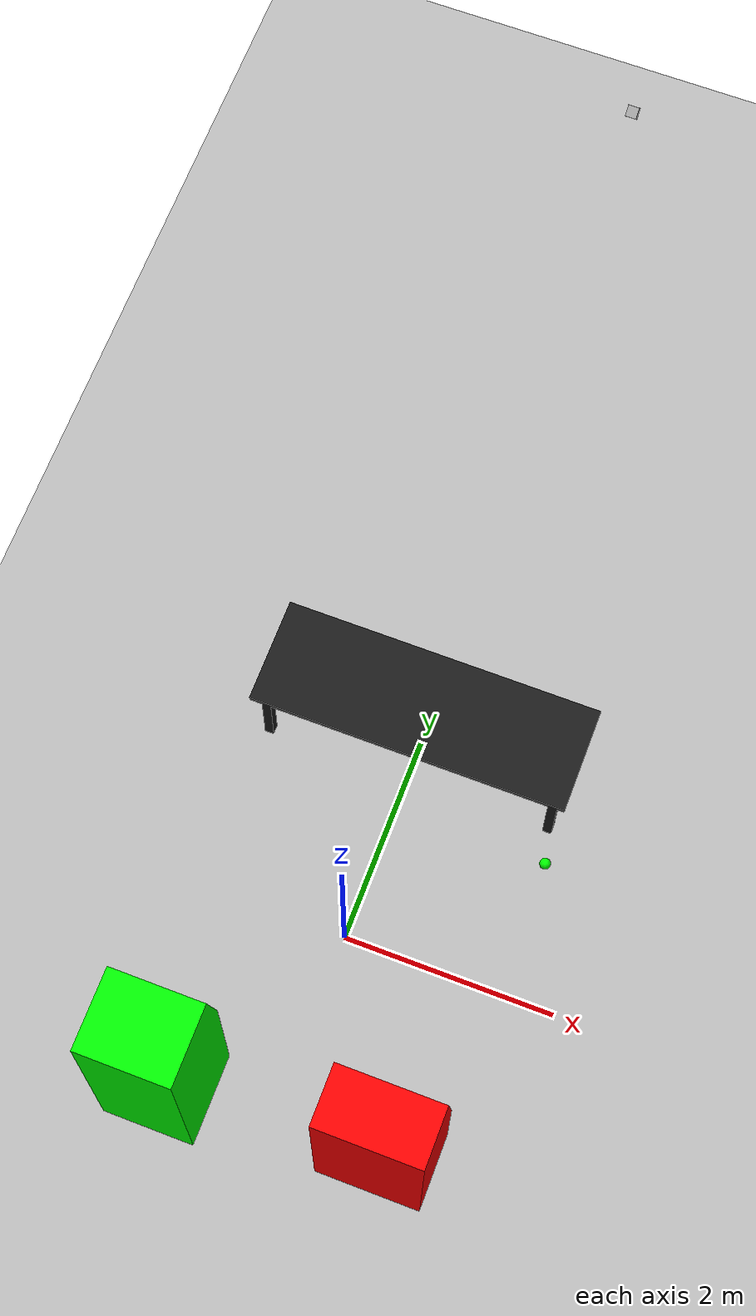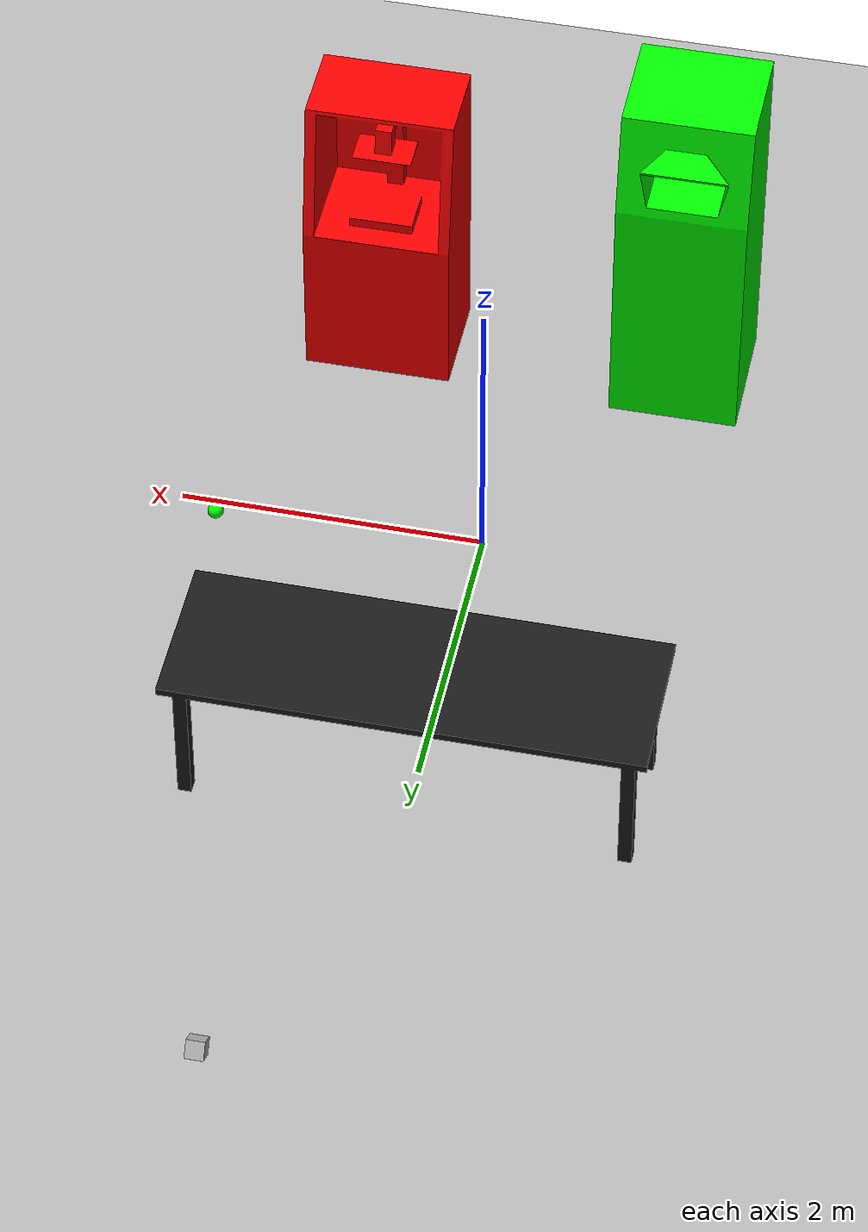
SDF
<sdf version="1.9">
 <world name="default">
  <plugin filename="gz-sim-sensors-system" name="gz::sim::systems::Sensors">
   <render_engine>ogre2</render_engine>
  </plugin>
  <scene><shadows>true</shadows><ambient>0.4 0.4 0.4 1</ambient><background>0.7 0.7 0.7 1</background></scene>
  <light name="sun" type="directional">
   <pose>0 0 10 0 0 1</pose>
   <diffuse>0.9 0.9 0.9 1</diffuse>
   <specular>0.3 0.3 0.3 1</specular>
   <direction>-0.5 0.1 -0.9</direction>
  </light>
  <model name="Camera">
   <pose>0 7 3.5 0 0.5999 -1.5708</pose>
   <static>true</static>
   <link name="link">
    <pose>0.05 0.05 0.05 0 0 0</pose>
    <collision name="collision"><geometry><box><size>0.1 0.1 0.1</size></box></geometry></collision>
    <visual name="visual"><geometry><box><size>0.1 0.1 0.1</size></box></geometry></visual>
    <sensor name="rgb_camera" type="camera">
     <always_on>true</always_on>
     <update_rate>10</update_rate>
     <camera>
      <horizontal_fov>1.5</horizontal_fov>
      <image><width>800</width><height>600</height><format>R8G8B8</format></image>
      <clip><near>0.1</near><far>30</far></clip>
     </camera>
     <topic>/camera/image</topic>
    </sensor>
    <sensor name="depth_camera" type="depth_camera">
     <always_on>true</always_on>
     <update_rate>10</update_rate>
     <camera>
      <horizontal_fov>1.5</horizontal_fov>
      <image><width>800</width><height>600</height><format>R_FLOAT32</format></image>
      <clip><near>0.1</near><far>30</far></clip>
     </camera>
     <topic>/depth_camera/image</topic>
    </sensor>
   </link>
  </model>
  <model name="Curing_station">
   <static>true</static>
   <link name="Curing_link">
    <pose>-1 -1.8 0.9 0 0 0</pose>
    <visual name="Curing_visual">
     <geometry><mesh><uri>meshes/Curing.obj</uri><scale>0.0015 0.0015 0.0015</scale></mesh></geometry>
     <material><ambient>0 1 0 1</ambient><diffuse>0 1 0 1</diffuse></material>
    </visual>
    <collision name="Curing_collision">
     <geometry><mesh><uri>meshes/Curing_col.obj</uri><scale>0.001 0.001 0.001</scale></mesh></geometry>
    </collision>
   </link>
  </model>
  <model name="3d Printer">
   <static>true</static>
   <link name="Printer_link">
    <pose>1 -1.9 0.65 0 0 0</pose>
    <visual name="Printer_visual">
     <geometry><mesh><uri>meshes/Printer.obj</uri><scale>0.002 0.002 0.002</scale></mesh></geometry>
     <material><ambient>1 0 0 1</ambient><diffuse>1 0 0 1</diffuse></material>
    </visual>
    <collision name="Printer_collision">
     <geometry><mesh><uri>meshes/Printer_col.obj</uri><scale>0.001 0.001 0.001</scale></mesh></geometry>
    </collision>
   </link>
  </model>
  <model name="Table">
   <static>true</static>
   <link name="Table_link">
    <pose>0 2.02 0 1.570 0 0</pose>
    <visual name="Table_visual">
     <geometry><mesh><uri>meshes/Table.obj</uri><scale>0.005 0.005 0.005</scale></mesh></geometry>
     <material><ambient>0.1 0.1 0.1 1</ambient><diffuse>0.1 0.1 0.1 1</diffuse></material>
    </visual>
    <collision name="Table_collision">
     <geometry><mesh><uri>meshes/Table_col.obj</uri><scale>0.001 0.001 0.001</scale></mesh></geometry>
    </collision>
   </link>
  </model>
  <model name="target_marker">
   <static>true</static>
   <pose>1.5 1.0 1.0 0 0 0</pose>
   <link name="marker_link">
    <visual name="marker_visual">
     <geometry><sphere><radius>0.05</radius></sphere></geometry>
     <material><ambient>0 1 0 1</ambient><diffuse>0 1 0 1</diffuse></material>
    </visual>
   </link>
  </model>
  <model name="ground_plane">
   <static>true</static>
   <link name="ground_link">
    <collision name="ground_collision">
     <geometry><plane><normal>0 0 1</normal><size>100 100</size></plane></geometry>
     <surface><friction><ode><mu>1.0</mu><mu2>1.0</mu2></ode></friction></surface>
    </collision>
    <visual name="ground_visual">
     <cast_shadows>false</cast_shadows>
     <geometry><plane><normal>0 0 1</normal><size>100 100</size></plane></geometry>
     <material>
      <ambient>0.3 0.3 0.3 1</ambient>
      <diffuse>0.7 0.7 0.7 1</diffuse>
      <specular>0.1 0.1 0.1 1</specular>
     </material>
    </visual>
   </link>
  </model>
 </world>
</sdf>
